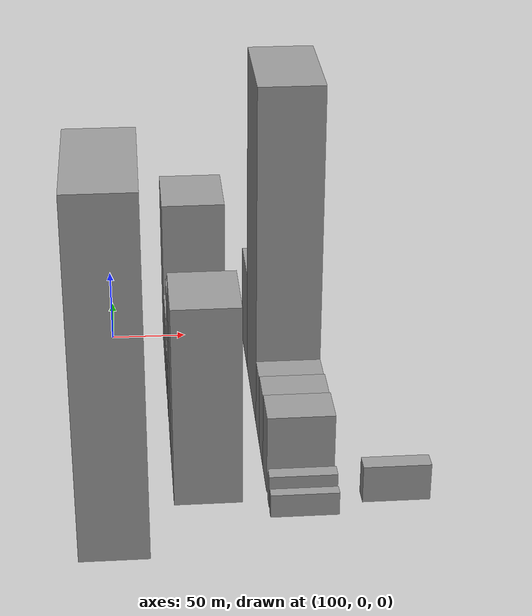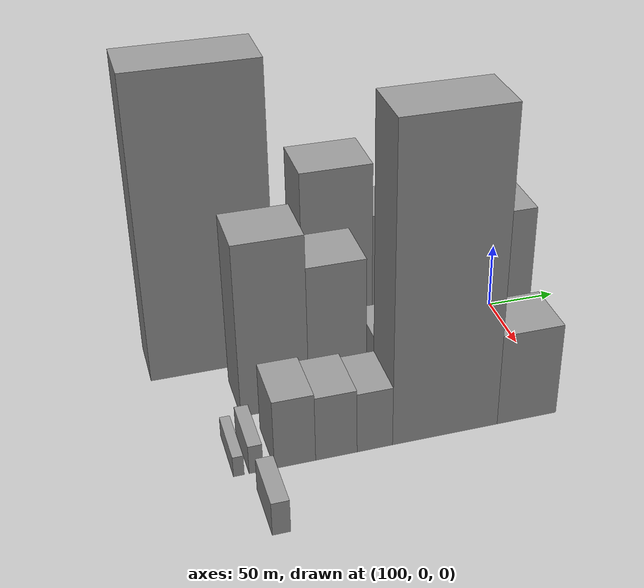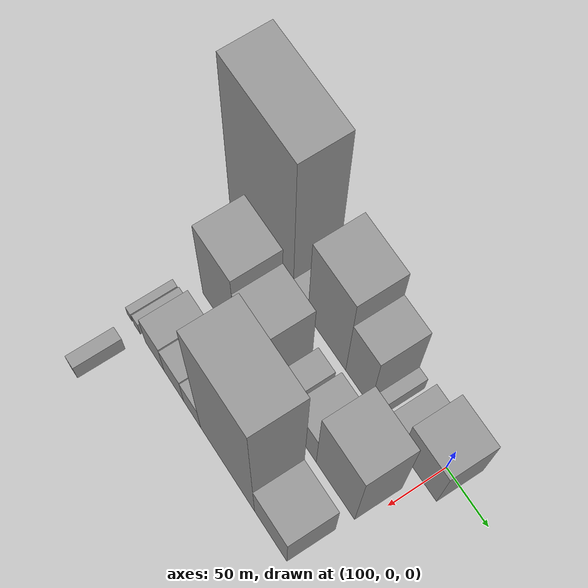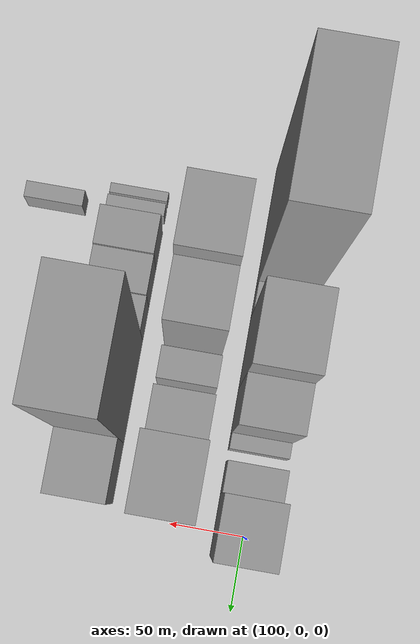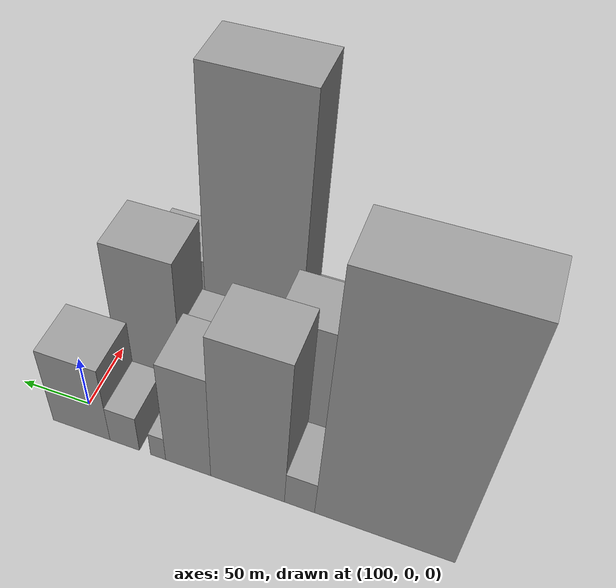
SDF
<sdf version="1.6">
 <world name="default">
  <model name="building_20">
   <static>1</static>
   <pose>100.0000 -210.1703 0 0.000000 0.000000 0.000000</pose>
   <link name="link">
    <pose>0 0 111.00 0 0 0</pose>
    <collision name="collision"><geometry><box><size>40.0000 87.2600 222.0000</size></box></geometry></collision>
    <visual name="visual">
     <cast_shadows>0</cast_shadows>
     <geometry><box><size>40.0000 87.2600 222.0000</size></box></geometry>
     <material>
      <script>
       <uri>model://grey_wall/materials/scripts</uri>
       <uri>model://grey_wall/materials/textures</uri>
       <name>vrc/grey_wall</name>
      </script>
     </material>
    </visual>
   </link>
  </model>
  <model name="building_21">
   <static>1</static>
   <pose>100.0000 -156.7400 0 0.000000 0.000000 0.000000</pose>
   <link name="link">
    <pose>0 0 16.50 0 0 0</pose>
    <collision name="collision"><geometry><box><size>40.0000 19.6007 33.0000</size></box></geometry></collision>
    <visual name="visual">
     <cast_shadows>0</cast_shadows>
     <geometry><box><size>40.0000 19.6007 33.0000</size></box></geometry>
     <material>
      <script>
       <uri>model://grey_wall/materials/scripts</uri>
       <uri>model://grey_wall/materials/textures</uri>
       <name>vrc/grey_wall</name>
      </script>
     </material>
    </visual>
   </link>
  </model>
  <model name="building_22">
   <static>1</static>
   <pose>100.0000 -122.1969 0 0.000000 0.000000 0.000000</pose>
   <link name="link">
    <pose>0 0 70.50 0 0 0</pose>
    <collision name="collision"><geometry><box><size>40.0000 49.4855 141.0000</size></box></geometry></collision>
    <visual name="visual">
     <cast_shadows>0</cast_shadows>
     <geometry><box><size>40.0000 49.4855 141.0000</size></box></geometry>
     <material>
      <script>
       <uri>model://grey_wall/materials/scripts</uri>
       <uri>model://grey_wall/materials/textures</uri>
       <name>vrc/grey_wall</name>
      </script>
     </material>
    </visual>
   </link>
  </model>
  <model name="building_23">
   <static>1</static>
   <pose>100.0000 -81.7811 0 0.000000 0.000000 0.000000</pose>
   <link name="link">
    <pose>0 0 51.00 0 0 0</pose>
    <collision name="collision"><geometry><box><size>40.0000 31.3461 102.0000</size></box></geometry></collision>
    <visual name="visual">
     <cast_shadows>0</cast_shadows>
     <geometry><box><size>40.0000 31.3461 102.0000</size></box></geometry>
     <material>
      <script>
       <uri>model://grey_wall/materials/scripts</uri>
       <uri>model://grey_wall/materials/textures</uri>
       <name>vrc/grey_wall</name>
      </script>
     </material>
    </visual>
   </link>
  </model>
  <model name="building_24">
   <static>1</static>
   <pose>100.0000 -60.7981 0 0.000000 0.000000 0.000000</pose>
   <link name="link">
    <pose>0 0 12.00 0 0 0</pose>
    <collision name="collision"><geometry><box><size>40.0000 10.6198 24.0000</size></box></geometry></collision>
    <visual name="visual">
     <cast_shadows>0</cast_shadows>
     <geometry><box><size>40.0000 10.6198 24.0000</size></box></geometry>
     <material>
      <script>
       <uri>model://grey_wall/materials/scripts</uri>
       <uri>model://grey_wall/materials/textures</uri>
       <name>vrc/grey_wall</name>
      </script>
     </material>
    </visual>
   </link>
  </model>
  <model name="building_25">
   <static>1</static>
   <pose>100.0000 -36.8509 0 0.000000 0.000000 0.000000</pose>
   <link name="link">
    <pose>0 0 18.00 0 0 0</pose>
    <collision name="collision"><geometry><box><size>40.0000 21.2747 36.0000</size></box></geometry></collision>
    <visual name="visual">
     <cast_shadows>0</cast_shadows>
     <geometry><box><size>40.0000 21.2747 36.0000</size></box></geometry>
     <material>
      <script>
       <uri>model://grey_wall/materials/scripts</uri>
       <uri>model://grey_wall/materials/textures</uri>
       <name>vrc/grey_wall</name>
      </script>
     </material>
    </visual>
   </link>
  </model>
  <model name="building_26">
   <static>1</static>
   <pose>100.0000 -5.1688 0 0.000000 0.000000 0.000000</pose>
   <link name="link">
    <pose>0 0 37.50 0 0 0</pose>
    <collision name="collision"><geometry><box><size>40.0000 42.0895 75.0000</size></box></geometry></collision>
    <visual name="visual">
     <cast_shadows>0</cast_shadows>
     <geometry><box><size>40.0000 42.0895 75.0000</size></box></geometry>
     <material>
      <script>
       <uri>model://grey_wall/materials/scripts</uri>
       <uri>model://grey_wall/materials/textures</uri>
       <name>vrc/grey_wall</name>
      </script>
     </material>
    </visual>
   </link>
  </model>
  <model name="building_74">
   <static>1</static>
   <pose>155.0000 -180.8123 0 0.000000 0.000000 0.000000</pose>
   <link name="link">
    <pose>0 0 64.50 0 0 0</pose>
    <collision name="collision"><geometry><box><size>40.0000 45.7296 129.0000</size></box></geometry></collision>
    <visual name="visual">
     <cast_shadows>0</cast_shadows>
     <geometry><box><size>40.0000 45.7296 129.0000</size></box></geometry>
     <material>
      <script>
       <uri>model://grey_wall/materials/scripts</uri>
       <uri>model://grey_wall/materials/textures</uri>
       <name>vrc/grey_wall</name>
      </script>
     </material>
    </visual>
   </link>
  </model>
  <model name="building_75">
   <static>1</static>
   <pose>155.0000 -138.2342 0 0.000000 0.000000 0.000000</pose>
   <link name="link">
    <pose>0 0 52.50 0 0 0</pose>
    <collision name="collision"><geometry><box><size>40.0000 39.4267 105.0000</size></box></geometry></collision>
    <visual name="visual">
     <cast_shadows>0</cast_shadows>
     <geometry><box><size>40.0000 39.4267 105.0000</size></box></geometry>
     <material>
      <script>
       <uri>model://grey_wall/materials/scripts</uri>
       <uri>model://grey_wall/materials/textures</uri>
       <name>vrc/grey_wall</name>
      </script>
     </material>
    </visual>
   </link>
  </model>
  <model name="building_76">
   <static>1</static>
   <pose>155.0000 -101.8168 0 0.000000 0.000000 0.000000</pose>
   <link name="link">
    <pose>0 0 21.00 0 0 0</pose>
    <collision name="collision"><geometry><box><size>40.0000 21.4081 42.0000</size></box></geometry></collision>
    <visual name="visual">
     <cast_shadows>0</cast_shadows>
     <geometry><box><size>40.0000 21.4081 42.0000</size></box></geometry>
     <material>
      <script>
       <uri>model://grey_wall/materials/scripts</uri>
       <uri>model://grey_wall/materials/textures</uri>
       <name>vrc/grey_wall</name>
      </script>
     </material>
    </visual>
   </link>
  </model>
  <model name="building_77">
   <static>1</static>
   <pose>155.0000 -69.0813 0 0.000000 0.000000 0.000000</pose>
   <link name="link">
    <pose>0 0 30.00 0 0 0</pose>
    <collision name="collision"><geometry><box><size>40.0000 32.0629 60.0000</size></box></geometry></collision>
    <visual name="visual">
     <cast_shadows>0</cast_shadows>
     <geometry><box><size>40.0000 32.0629 60.0000</size></box></geometry>
     <material>
      <script>
       <uri>model://grey_wall/materials/scripts</uri>
       <uri>model://grey_wall/materials/textures</uri>
       <name>vrc/grey_wall</name>
      </script>
     </material>
    </visual>
   </link>
  </model>
  <model name="building_78">
   <static>1</static>
   <pose>155.0000 -28.9331 0 0.000000 0.000000 0.000000</pose>
   <link name="link">
    <pose>0 0 61.50 0 0 0</pose>
    <collision name="collision"><geometry><box><size>40.0000 48.2335 123.0000</size></box></geometry></collision>
    <visual name="visual">
     <cast_shadows>0</cast_shadows>
     <geometry><box><size>40.0000 48.2335 123.0000</size></box></geometry>
     <material>
      <script>
       <uri>model://grey_wall/materials/scripts</uri>
       <uri>model://grey_wall/materials/textures</uri>
       <name>vrc/grey_wall</name>
      </script>
     </material>
    </visual>
   </link>
  </model>
  <model name="building_128">
   <static>1</static>
   <pose>210.0000 -216.6535 0 0.000000 0.000000 0.000000</pose>
   <link name="link">
    <pose>0 0 7.50 0 0 0</pose>
    <collision name="collision"><geometry><box><size>40.0000 6.7360 15.0000</size></box></geometry></collision>
    <visual name="visual">
     <cast_shadows>0</cast_shadows>
     <geometry><box><size>40.0000 6.7360 15.0000</size></box></geometry>
     <material>
      <script>
       <uri>model://grey_wall/materials/scripts</uri>
       <uri>model://grey_wall/materials/textures</uri>
       <name>vrc/grey_wall</name>
      </script>
     </material>
    </visual>
   </link>
  </model>
  <model name="building_129">
   <static>1</static>
   <pose>210.0000 -205.8684 0 0.000000 0.000000 0.000000</pose>
   <link name="link">
    <pose>0 0 10.50 0 0 0</pose>
    <collision name="collision"><geometry><box><size>40.0000 8.8343 21.0000</size></box></geometry></collision>
    <visual name="visual">
     <cast_shadows>0</cast_shadows>
     <geometry><box><size>40.0000 8.8343 21.0000</size></box></geometry>
     <material>
      <script>
       <uri>model://grey_wall/materials/scripts</uri>
       <uri>model://grey_wall/materials/textures</uri>
       <name>vrc/grey_wall</name>
      </script>
     </material>
    </visual>
   </link>
  </model>
  <model name="building_130">
   <static>1</static>
   <pose>210.0000 -181.3753 0 0.000000 0.000000 0.000000</pose>
   <link name="link">
    <pose>0 0 25.50 0 0 0</pose>
    <collision name="collision"><geometry><box><size>40.0000 26.1519 51.0000</size></box></geometry></collision>
    <visual name="visual">
     <cast_shadows>0</cast_shadows>
     <geometry><box><size>40.0000 26.1519 51.0000</size></box></geometry>
     <material>
      <script>
       <uri>model://grey_wall/materials/scripts</uri>
       <uri>model://grey_wall/materials/textures</uri>
       <name>vrc/grey_wall</name>
      </script>
     </material>
    </visual>
   </link>
  </model>
  <model name="building_131">
   <static>1</static>
   <pose>210.0000 -154.9184 0 0.000000 0.000000 0.000000</pose>
   <link name="link">
    <pose>0 0 24.00 0 0 0</pose>
    <collision name="collision"><geometry><box><size>40.0000 26.7618 48.0000</size></box></geometry></collision>
    <visual name="visual">
     <cast_shadows>0</cast_shadows>
     <geometry><box><size>40.0000 26.7618 48.0000</size></box></geometry>
     <material>
      <script>
       <uri>model://grey_wall/materials/scripts</uri>
       <uri>model://grey_wall/materials/textures</uri>
       <name>vrc/grey_wall</name>
      </script>
     </material>
    </visual>
   </link>
  </model>
  <model name="building_132">
   <static>1</static>
   <pose>210.0000 -129.9310 0 0.000000 0.000000 0.000000</pose>
   <link name="link">
    <pose>0 0 22.50 0 0 0</pose>
    <collision name="collision"><geometry><box><size>40.0000 23.2130 45.0000</size></box></geometry></collision>
    <visual name="visual">
     <cast_shadows>0</cast_shadows>
     <geometry><box><size>40.0000 23.2130 45.0000</size></box></geometry>
     <material>
      <script>
       <uri>model://grey_wall/materials/scripts</uri>
       <uri>model://grey_wall/materials/textures</uri>
       <name>vrc/grey_wall</name>
      </script>
     </material>
    </visual>
   </link>
  </model>
  <model name="building_133">
   <static>1</static>
   <pose>210.0000 -82.9242 0 0.000000 0.000000 0.000000</pose>
   <link name="link">
    <pose>0 0 112.50 0 0 0</pose>
    <collision name="collision"><geometry><box><size>40.0000 70.8005 225.0000</size></box></geometry></collision>
    <visual name="visual">
     <cast_shadows>0</cast_shadows>
     <geometry><box><size>40.0000 70.8005 225.0000</size></box></geometry>
     <material>
      <script>
       <uri>model://grey_wall/materials/scripts</uri>
       <uri>model://grey_wall/materials/textures</uri>
       <name>vrc/grey_wall</name>
      </script>
     </material>
    </visual>
   </link>
  </model>
  <model name="building_134">
   <static>1</static>
   <pose>210.0000 -26.9606 0 0.000000 0.000000 0.000000</pose>
   <link name="link">
    <pose>0 0 34.50 0 0 0</pose>
    <collision name="collision"><geometry><box><size>40.0000 41.1267 69.0000</size></box></geometry></collision>
    <visual name="visual">
     <cast_shadows>0</cast_shadows>
     <geometry><box><size>40.0000 41.1267 69.0000</size></box></geometry>
     <material>
      <script>
       <uri>model://grey_wall/materials/scripts</uri>
       <uri>model://grey_wall/materials/textures</uri>
       <name>vrc/grey_wall</name>
      </script>
     </material>
    </visual>
   </link>
  </model>
  <model name="building_181">
   <static>1</static>
   <pose>265.0000 -203.3347 0 0.000000 0.000000 0.000000</pose>
   <link name="link">
    <pose>0 0 12.00 0 0 0</pose>
    <collision name="collision"><geometry><box><size>40.0000 10.9353 24.0000</size></box></geometry></collision>
    <visual name="visual">
     <cast_shadows>0</cast_shadows>
     <geometry><box><size>40.0000 10.9353 24.0000</size></box></geometry>
     <material>
      <script>
       <uri>model://grey_wall/materials/scripts</uri>
       <uri>model://grey_wall/materials/textures</uri>
       <name>vrc/grey_wall</name>
      </script>
     </material>
    </visual>
   </link>
  </model>
 </world>
</sdf>
